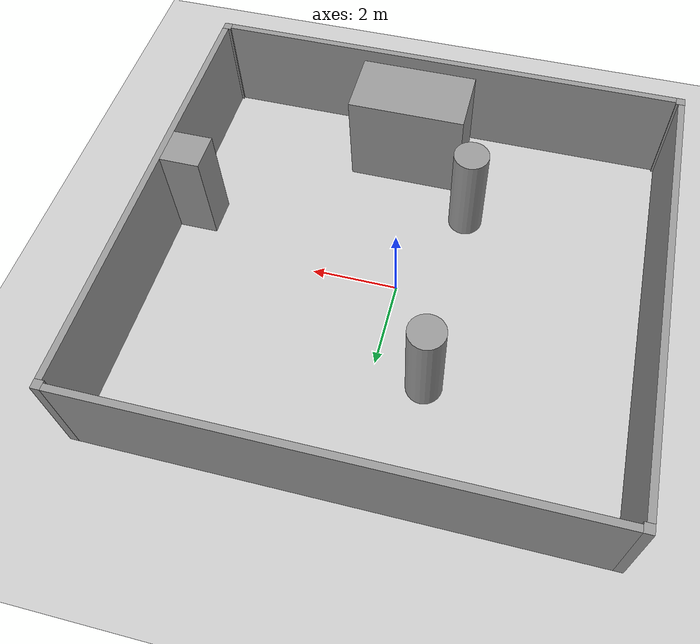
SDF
<sdf version="1.6">
 <world name="default">
  <light name="sun" type="directional">
   <pose>0 0 10 0 -0 0</pose>
   <diffuse>0.8 0.8 0.8 1</diffuse>
   <specular>0.1 0.1 0.1 1</specular>
   <attenuation>
    <range>1000</range>
    <constant>0.9</constant>
    <linear>0.01</linear>
    <quadratic>0.001</quadratic>
   </attenuation>
   <direction>-0.5 0.5 -1</direction>
  </light>
  <model name="ground_plane">
   <static>1</static>
   <link name="link">
    <collision name="collision">
     <geometry><plane><normal>0 0 1</normal><size>100 100</size></plane></geometry>
     <surface><friction><ode><mu>100</mu><mu2>50</mu2></ode></friction></surface>
    </collision>
    <visual name="visual">
     <cast_shadows>0</cast_shadows>
     <geometry><plane><normal>0 0 1</normal><size>100 100</size></plane></geometry>
     <material>
      <script><uri>file://media/materials/scripts/gazebo.material</uri><name>Gazebo/Grey</name></script>
     </material>
    </visual>
   </link>
  </model>
  <gravity>0 0 -9.8</gravity>
  <magnetic_field>6e-06 2.3e-05 -4.2e-05</magnetic_field>
  <atmosphere type="adiabatic"/>
  <physics name="default_physics" default="0" type="ode">
   <max_step_size>0.001</max_step_size>
   <real_time_factor>1</real_time_factor>
   <real_time_update_rate>1000</real_time_update_rate>
  </physics>
  <scene><ambient>0.4 0.4 0.4 1</ambient><background>0.7 0.7 0.7 1</background><shadows>1</shadows></scene>
  <spherical_coordinates>
   <surface_model>EARTH_WGS84</surface_model>
   <latitude_deg>0</latitude_deg>
   <longitude_deg>0</longitude_deg>
   <elevation>0</elevation>
   <heading_deg>0</heading_deg>
  </spherical_coordinates>
  <model name="bottom_wall">
   <link name="link">
    <pose>0 0 1.2 0 -0 0</pose>
    <inertial>
     <mass>1</mass>
     <inertia><ixx>1</ixx><ixy>0</ixy><ixz>0</ixz><iyy>1</iyy><iyz>0</iyz><izz>1</izz></inertia>
    </inertial>
    <visual name="visual">
     <cast_shadows>0</cast_shadows>
     <geometry><box><size>11 0.15 2.4</size></box></geometry>
     <material>
      <script>
       <uri>model://grey_wall/materials/scripts</uri>
       <uri>model://grey_wall/materials/textures</uri>
       <name>vrc/grey_wall</name>
      </script>
      <ambient>1 1 1 1</ambient>
      <diffuse>1 1 1 1</diffuse>
      <specular>0 0 0 1</specular>
      <emissive>0 0 0 1</emissive>
      <shader type="vertex"><normal_map>__default__</normal_map></shader>
     </material>
    </visual>
    <collision name="collision">
     <geometry><box><size>11 0.15 2.4</size></box></geometry>
     <surface>
      <friction>
       <ode><mu>1</mu><mu2>1</mu2><fdir1>0 0 0</fdir1><slip1>0</slip1><slip2>0</slip2></ode>
       <torsional>
        <coefficient>1</coefficient>
        <patch_radius>0</patch_radius>
        <surface_radius>0</surface_radius>
        <use_patch_radius>1</use_patch_radius>
        <ode><slip>0</slip></ode>
       </torsional>
      </friction>
      <bounce><restitution_coefficient>0</restitution_coefficient><threshold>1e+06</threshold></bounce>
      <contact>
       <collide_without_contact>0</collide_without_contact>
       <collide_without_contact_bitmask>1</collide_without_contact_bitmask>
       <collide_bitmask>1</collide_bitmask>
       <ode>
        <soft_cfm>0</soft_cfm>
        <soft_erp>0.2</soft_erp>
        <kp>1e+13</kp>
        <kd>1</kd>
        <max_vel>0.01</max_vel>
        <min_depth>0</min_depth>
       </ode>
       <bullet>
        <split_impulse>1</split_impulse>
        <split_impulse_penetration_threshold>-0.01</split_impulse_penetration_threshold>
        <soft_cfm>0</soft_cfm>
        <soft_erp>0.2</soft_erp>
        <kp>1e+13</kp>
        <kd>1</kd>
       </bullet>
      </contact>
     </surface>
    </collision>
   </link>
   <static>1</static>
   <pose>0 -5.125 0 0 -0 0</pose>
  </model>
  <model name="top_wall">
   <link name="link">
    <pose>0 0 1.2 0 -0 0</pose>
    <inertial>
     <mass>1</mass>
     <inertia><ixx>1</ixx><ixy>0</ixy><ixz>0</ixz><iyy>1</iyy><iyz>0</iyz><izz>1</izz></inertia>
    </inertial>
    <visual name="visual">
     <cast_shadows>0</cast_shadows>
     <geometry><box><size>11 0.15 2.4</size></box></geometry>
     <material>
      <script>
       <uri>model://grey_wall/materials/scripts</uri>
       <uri>model://grey_wall/materials/textures</uri>
       <name>vrc/grey_wall</name>
      </script>
      <ambient>1 1 1 1</ambient>
      <diffuse>1 1 1 1</diffuse>
      <specular>0 0 0 1</specular>
      <emissive>0 0 0 1</emissive>
      <shader type="vertex"><normal_map>__default__</normal_map></shader>
     </material>
    </visual>
    <collision name="collision">
     <geometry><box><size>11 0.15 2.4</size></box></geometry>
     <surface>
      <friction>
       <ode><mu>1</mu><mu2>1</mu2><fdir1>0 0 0</fdir1><slip1>0</slip1><slip2>0</slip2></ode>
       <torsional>
        <coefficient>1</coefficient>
        <patch_radius>0</patch_radius>
        <surface_radius>0</surface_radius>
        <use_patch_radius>1</use_patch_radius>
        <ode><slip>0</slip></ode>
       </torsional>
      </friction>
      <bounce><restitution_coefficient>0</restitution_coefficient><threshold>1e+06</threshold></bounce>
      <contact>
       <collide_without_contact>0</collide_without_contact>
       <collide_without_contact_bitmask>1</collide_without_contact_bitmask>
       <collide_bitmask>1</collide_bitmask>
       <ode>
        <soft_cfm>0</soft_cfm>
        <soft_erp>0.2</soft_erp>
        <kp>1e+13</kp>
        <kd>1</kd>
        <max_vel>0.01</max_vel>
        <min_depth>0</min_depth>
       </ode>
       <bullet>
        <split_impulse>1</split_impulse>
        <split_impulse_penetration_threshold>-0.01</split_impulse_penetration_threshold>
        <soft_cfm>0</soft_cfm>
        <soft_erp>0.2</soft_erp>
        <kp>1e+13</kp>
        <kd>1</kd>
       </bullet>
      </contact>
     </surface>
    </collision>
   </link>
   <static>1</static>
   <pose>0 5.125 0 0 -0 0</pose>
  </model>
  <model name="left_wall">
   <link name="link">
    <pose>0 0 1.2 0 -0 0</pose>
    <inertial>
     <mass>1</mass>
     <inertia><ixx>1</ixx><ixy>0</ixy><ixz>0</ixz><iyy>1</iyy><iyz>0</iyz><izz>1</izz></inertia>
    </inertial>
    <visual name="visual">
     <cast_shadows>0</cast_shadows>
     <geometry><box><size>0.15 10 2.4</size></box></geometry>
     <material>
      <script>
       <uri>model://grey_wall/materials/scripts</uri>
       <uri>model://grey_wall/materials/textures</uri>
       <name>vrc/grey_wall</name>
      </script>
      <ambient>1 1 1 1</ambient>
      <diffuse>1 1 1 1</diffuse>
      <specular>0 0 0 1</specular>
      <emissive>0 0 0 1</emissive>
      <shader type="vertex"><normal_map>__default__</normal_map></shader>
     </material>
    </visual>
    <collision name="collision">
     <geometry><box><size>0.15 10 2.4</size></box></geometry>
     <surface>
      <friction>
       <ode><mu>1</mu><mu2>1</mu2><fdir1>0 0 0</fdir1><slip1>0</slip1><slip2>0</slip2></ode>
       <torsional>
        <coefficient>1</coefficient>
        <patch_radius>0</patch_radius>
        <surface_radius>0</surface_radius>
        <use_patch_radius>1</use_patch_radius>
        <ode><slip>0</slip></ode>
       </torsional>
      </friction>
      <bounce><restitution_coefficient>0</restitution_coefficient><threshold>1e+06</threshold></bounce>
      <contact>
       <collide_without_contact>0</collide_without_contact>
       <collide_without_contact_bitmask>1</collide_without_contact_bitmask>
       <collide_bitmask>1</collide_bitmask>
       <ode>
        <soft_cfm>0</soft_cfm>
        <soft_erp>0.2</soft_erp>
        <kp>1e+13</kp>
        <kd>1</kd>
        <max_vel>0.01</max_vel>
        <min_depth>0</min_depth>
       </ode>
       <bullet>
        <split_impulse>1</split_impulse>
        <split_impulse_penetration_threshold>-0.01</split_impulse_penetration_threshold>
        <soft_cfm>0</soft_cfm>
        <soft_erp>0.2</soft_erp>
        <kp>1e+13</kp>
        <kd>1</kd>
       </bullet>
      </contact>
     </surface>
    </collision>
   </link>
   <static>1</static>
   <pose>-5.625 0 0 0 -0 0</pose>
  </model>
  <model name="right_wall">
   <link name="link">
    <pose>0 0 1.2 0 -0 0</pose>
    <inertial>
     <mass>1</mass>
     <inertia><ixx>1</ixx><ixy>0</ixy><ixz>0</ixz><iyy>1</iyy><iyz>0</iyz><izz>1</izz></inertia>
    </inertial>
    <visual name="visual">
     <cast_shadows>0</cast_shadows>
     <geometry><box><size>0.15 10 2.4</size></box></geometry>
     <material>
      <script>
       <uri>model://grey_wall/materials/scripts</uri>
       <uri>model://grey_wall/materials/textures</uri>
       <name>vrc/grey_wall</name>
      </script>
      <ambient>1 1 1 1</ambient>
      <diffuse>1 1 1 1</diffuse>
      <specular>0 0 0 1</specular>
      <emissive>0 0 0 1</emissive>
      <shader type="vertex"><normal_map>__default__</normal_map></shader>
     </material>
    </visual>
    <collision name="collision">
     <geometry><box><size>0.15 10 2.4</size></box></geometry>
     <surface>
      <friction>
       <ode><mu>1</mu><mu2>1</mu2><fdir1>0 0 0</fdir1><slip1>0</slip1><slip2>0</slip2></ode>
       <torsional>
        <coefficient>1</coefficient>
        <patch_radius>0</patch_radius>
        <surface_radius>0</surface_radius>
        <use_patch_radius>1</use_patch_radius>
        <ode><slip>0</slip></ode>
       </torsional>
      </friction>
      <bounce><restitution_coefficient>0</restitution_coefficient><threshold>1e+06</threshold></bounce>
      <contact>
       <collide_without_contact>0</collide_without_contact>
       <collide_without_contact_bitmask>1</collide_without_contact_bitmask>
       <collide_bitmask>1</collide_bitmask>
       <ode>
        <soft_cfm>0</soft_cfm>
        <soft_erp>0.2</soft_erp>
        <kp>1e+13</kp>
        <kd>1</kd>
        <max_vel>0.01</max_vel>
        <min_depth>0</min_depth>
       </ode>
       <bullet>
        <split_impulse>1</split_impulse>
        <split_impulse_penetration_threshold>-0.01</split_impulse_penetration_threshold>
        <soft_cfm>0</soft_cfm>
        <soft_erp>0.2</soft_erp>
        <kp>1e+13</kp>
        <kd>1</kd>
       </bullet>
      </contact>
     </surface>
    </collision>
   </link>
   <static>1</static>
   <pose>5.625 0 0 0 -0 0</pose>
  </model>
  <model name="bottom_left_corner">
   <link name="link">
    <pose>0 0 1.2 0 -0 0</pose>
    <inertial>
     <mass>1</mass>
     <inertia><ixx>1</ixx><ixy>0</ixy><ixz>0</ixz><iyy>1</iyy><iyz>0</iyz><izz>1</izz></inertia>
    </inertial>
    <visual name="visual">
     <cast_shadows>0</cast_shadows>
     <geometry><box><size>0.2 0.2 2.4</size></box></geometry>
     <material>
      <script>
       <uri>model://grey_wall/materials/scripts</uri>
       <uri>model://grey_wall/materials/textures</uri>
       <name>vrc/grey_wall</name>
      </script>
      <ambient>1 1 1 1</ambient>
      <diffuse>1 1 1 1</diffuse>
      <specular>0 0 0 1</specular>
      <emissive>0 0 0 1</emissive>
      <shader type="vertex"><normal_map>__default__</normal_map></shader>
     </material>
    </visual>
    <collision name="collision">
     <geometry><box><size>0.2 0.2 2.4</size></box></geometry>
     <surface>
      <friction>
       <ode><mu>1</mu><mu2>1</mu2><fdir1>0 0 0</fdir1><slip1>0</slip1><slip2>0</slip2></ode>
       <torsional>
        <coefficient>1</coefficient>
        <patch_radius>0</patch_radius>
        <surface_radius>0</surface_radius>
        <use_patch_radius>1</use_patch_radius>
        <ode><slip>0</slip></ode>
       </torsional>
      </friction>
      <bounce><restitution_coefficient>0</restitution_coefficient><threshold>1e+06</threshold></bounce>
      <contact>
       <collide_without_contact>0</collide_without_contact>
       <collide_without_contact_bitmask>1</collide_without_contact_bitmask>
       <collide_bitmask>1</collide_bitmask>
       <ode>
        <soft_cfm>0</soft_cfm>
        <soft_erp>0.2</soft_erp>
        <kp>1e+13</kp>
        <kd>1</kd>
        <max_vel>0.01</max_vel>
        <min_depth>0</min_depth>
       </ode>
       <bullet>
        <split_impulse>1</split_impulse>
        <split_impulse_penetration_threshold>-0.01</split_impulse_penetration_threshold>
        <soft_cfm>0</soft_cfm>
        <soft_erp>0.2</soft_erp>
        <kp>1e+13</kp>
        <kd>1</kd>
       </bullet>
      </contact>
     </surface>
    </collision>
   </link>
   <static>1</static>
   <pose>-5.6 -5.1 0 0 -0 0</pose>
  </model>
  <model name="bottom_right_corner">
   <link name="link">
    <pose>0 0 1.2 0 -0 0</pose>
    <inertial>
     <mass>1</mass>
     <inertia><ixx>1</ixx><ixy>0</ixy><ixz>0</ixz><iyy>1</iyy><iyz>0</iyz><izz>1</izz></inertia>
    </inertial>
    <visual name="visual">
     <cast_shadows>0</cast_shadows>
     <geometry><box><size>0.2 0.2 2.4</size></box></geometry>
     <material>
      <script>
       <uri>model://grey_wall/materials/scripts</uri>
       <uri>model://grey_wall/materials/textures</uri>
       <name>vrc/grey_wall</name>
      </script>
      <ambient>1 1 1 1</ambient>
      <diffuse>1 1 1 1</diffuse>
      <specular>0 0 0 1</specular>
      <emissive>0 0 0 1</emissive>
      <shader type="vertex"><normal_map>__default__</normal_map></shader>
     </material>
    </visual>
    <collision name="collision">
     <geometry><box><size>0.2 0.2 2.4</size></box></geometry>
     <surface>
      <friction>
       <ode><mu>1</mu><mu2>1</mu2><fdir1>0 0 0</fdir1><slip1>0</slip1><slip2>0</slip2></ode>
       <torsional>
        <coefficient>1</coefficient>
        <patch_radius>0</patch_radius>
        <surface_radius>0</surface_radius>
        <use_patch_radius>1</use_patch_radius>
        <ode><slip>0</slip></ode>
       </torsional>
      </friction>
      <bounce><restitution_coefficient>0</restitution_coefficient><threshold>1e+06</threshold></bounce>
      <contact>
       <collide_without_contact>0</collide_without_contact>
       <collide_without_contact_bitmask>1</collide_without_contact_bitmask>
       <collide_bitmask>1</collide_bitmask>
       <ode>
        <soft_cfm>0</soft_cfm>
        <soft_erp>0.2</soft_erp>
        <kp>1e+13</kp>
        <kd>1</kd>
        <max_vel>0.01</max_vel>
        <min_depth>0</min_depth>
       </ode>
       <bullet>
        <split_impulse>1</split_impulse>
        <split_impulse_penetration_threshold>-0.01</split_impulse_penetration_threshold>
        <soft_cfm>0</soft_cfm>
        <soft_erp>0.2</soft_erp>
        <kp>1e+13</kp>
        <kd>1</kd>
       </bullet>
      </contact>
     </surface>
    </collision>
   </link>
   <static>1</static>
   <pose>5.6 -5.1 0 0 -0 0</pose>
  </model>
  <model name="top_left_corner">
   <link name="link">
    <pose>0 0 1.2 0 -0 0</pose>
    <inertial>
     <mass>1</mass>
     <inertia><ixx>1</ixx><ixy>0</ixy><ixz>0</ixz><iyy>1</iyy><iyz>0</iyz><izz>1</izz></inertia>
    </inertial>
    <visual name="visual">
     <cast_shadows>0</cast_shadows>
     <geometry><box><size>0.2 0.2 2.4</size></box></geometry>
     <material>
      <script>
       <uri>model://grey_wall/materials/scripts</uri>
       <uri>model://grey_wall/materials/textures</uri>
       <name>vrc/grey_wall</name>
      </script>
      <ambient>1 1 1 1</ambient>
      <diffuse>1 1 1 1</diffuse>
      <specular>0 0 0 1</specular>
      <emissive>0 0 0 1</emissive>
      <shader type="vertex"><normal_map>__default__</normal_map></shader>
     </material>
    </visual>
    <collision name="collision">
     <geometry><box><size>0.2 0.2 2.4</size></box></geometry>
     <surface>
      <friction>
       <ode><mu>1</mu><mu2>1</mu2><fdir1>0 0 0</fdir1><slip1>0</slip1><slip2>0</slip2></ode>
       <torsional>
        <coefficient>1</coefficient>
        <patch_radius>0</patch_radius>
        <surface_radius>0</surface_radius>
        <use_patch_radius>1</use_patch_radius>
        <ode><slip>0</slip></ode>
       </torsional>
      </friction>
      <bounce><restitution_coefficient>0</restitution_coefficient><threshold>1e+06</threshold></bounce>
      <contact>
       <collide_without_contact>0</collide_without_contact>
       <collide_without_contact_bitmask>1</collide_without_contact_bitmask>
       <collide_bitmask>1</collide_bitmask>
       <ode>
        <soft_cfm>0</soft_cfm>
        <soft_erp>0.2</soft_erp>
        <kp>1e+13</kp>
        <kd>1</kd>
        <max_vel>0.01</max_vel>
        <min_depth>0</min_depth>
       </ode>
       <bullet>
        <split_impulse>1</split_impulse>
        <split_impulse_penetration_threshold>-0.01</split_impulse_penetration_threshold>
        <soft_cfm>0</soft_cfm>
        <soft_erp>0.2</soft_erp>
        <kp>1e+13</kp>
        <kd>1</kd>
       </bullet>
      </contact>
     </surface>
    </collision>
   </link>
   <static>1</static>
   <pose>-5.6 5.1 0 0 -0 0</pose>
  </model>
  <model name="top_right_corner">
   <link name="link">
    <pose>0 0 1.2 0 -0 0</pose>
    <inertial>
     <mass>1</mass>
     <inertia><ixx>1</ixx><ixy>0</ixy><ixz>0</ixz><iyy>1</iyy><iyz>0</iyz><izz>1</izz></inertia>
    </inertial>
    <visual name="visual">
     <cast_shadows>0</cast_shadows>
     <geometry><box><size>0.2 0.2 2.4</size></box></geometry>
     <material>
      <script>
       <uri>model://grey_wall/materials/scripts</uri>
       <uri>model://grey_wall/materials/textures</uri>
       <name>vrc/grey_wall</name>
      </script>
      <ambient>1 1 1 1</ambient>
      <diffuse>1 1 1 1</diffuse>
      <specular>0 0 0 1</specular>
      <emissive>0 0 0 1</emissive>
      <shader type="vertex"><normal_map>__default__</normal_map></shader>
     </material>
    </visual>
    <collision name="collision">
     <geometry><box><size>0.2 0.2 2.4</size></box></geometry>
     <surface>
      <friction>
       <ode><mu>1</mu><mu2>1</mu2><fdir1>0 0 0</fdir1><slip1>0</slip1><slip2>0</slip2></ode>
       <torsional>
        <coefficient>1</coefficient>
        <patch_radius>0</patch_radius>
        <surface_radius>0</surface_radius>
        <use_patch_radius>1</use_patch_radius>
        <ode><slip>0</slip></ode>
       </torsional>
      </friction>
      <bounce><restitution_coefficient>0</restitution_coefficient><threshold>1e+06</threshold></bounce>
      <contact>
       <collide_without_contact>0</collide_without_contact>
       <collide_without_contact_bitmask>1</collide_without_contact_bitmask>
       <collide_bitmask>1</collide_bitmask>
       <ode>
        <soft_cfm>0</soft_cfm>
        <soft_erp>0.2</soft_erp>
        <kp>1e+13</kp>
        <kd>1</kd>
        <max_vel>0.01</max_vel>
        <min_depth>0</min_depth>
       </ode>
       <bullet>
        <split_impulse>1</split_impulse>
        <split_impulse_penetration_threshold>-0.01</split_impulse_penetration_threshold>
        <soft_cfm>0</soft_cfm>
        <soft_erp>0.2</soft_erp>
        <kp>1e+13</kp>
        <kd>1</kd>
       </bullet>
      </contact>
     </surface>
    </collision>
   </link>
   <static>1</static>
   <pose>5.6 5.1 0 0 -0 0</pose>
  </model>
  <model name="fly_cycle">
   <link name="link">
    <pose>0 0 1.2 0 -0 0</pose>
    <inertial>
     <mass>1</mass>
     <inertia><ixx>1</ixx><ixy>0</ixy><ixz>0</ixz><iyy>1</iyy><iyz>0</iyz><izz>1</izz></inertia>
    </inertial>
    <visual name="visual">
     <cast_shadows>0</cast_shadows>
     <geometry><box><size>2.74 1.52 2.4</size></box></geometry>
     <material>
      <script>
       <uri>model://grey_wall/materials/scripts</uri>
       <uri>model://grey_wall/materials/textures</uri>
       <name>vrc/grey_wall</name>
      </script>
      <ambient>1 1 1 1</ambient>
      <diffuse>1 1 1 1</diffuse>
      <specular>0 0 0 1</specular>
      <emissive>0 0 0 1</emissive>
      <shader type="vertex"><normal_map>__default__</normal_map></shader>
     </material>
    </visual>
    <collision name="collision">
     <geometry><box><size>2.74 1.52 2.4</size></box></geometry>
     <surface>
      <friction>
       <ode><mu>1</mu><mu2>1</mu2><fdir1>0 0 0</fdir1><slip1>0</slip1><slip2>0</slip2></ode>
       <torsional>
        <coefficient>1</coefficient>
        <patch_radius>0</patch_radius>
        <surface_radius>0</surface_radius>
        <use_patch_radius>1</use_patch_radius>
        <ode><slip>0</slip></ode>
       </torsional>
      </friction>
      <bounce><restitution_coefficient>0</restitution_coefficient><threshold>1e+06</threshold></bounce>
      <contact>
       <collide_without_contact>0</collide_without_contact>
       <collide_without_contact_bitmask>1</collide_without_contact_bitmask>
       <collide_bitmask>1</collide_bitmask>
       <ode>
        <soft_cfm>0</soft_cfm>
        <soft_erp>0.2</soft_erp>
        <kp>1e+13</kp>
        <kd>1</kd>
        <max_vel>0.01</max_vel>
        <min_depth>0</min_depth>
       </ode>
       <bullet>
        <split_impulse>1</split_impulse>
        <split_impulse_penetration_threshold>-0.01</split_impulse_penetration_threshold>
        <soft_cfm>0</soft_cfm>
        <soft_erp>0.2</soft_erp>
        <kp>1e+13</kp>
        <kd>1</kd>
       </bullet>
      </contact>
     </surface>
    </collision>
   </link>
   <static>1</static>
   <pose>0.56 -3.94 0 0 -0 0</pose>
  </model>
  <model name="pillar_1">
   <link name="link">
    <pose>0 0 1.2 0 -0 0</pose>
    <inertial>
     <mass>1</mass>
     <inertia><ixx>1</ixx><ixy>0</ixy><ixz>0</ixz><iyy>1</iyy><iyz>0</iyz><izz>1</izz></inertia>
    </inertial>
    <visual name="visual">
     <cast_shadows>0</cast_shadows>
     <geometry><cylinder><radius>0.405</radius><length>2.4</length></cylinder></geometry>
     <material>
      <script>
       <uri>model://grey_wall/materials/scripts</uri>
       <uri>model://grey_wall/materials/textures</uri>
       <name>vrc/grey_wall</name>
      </script>
      <ambient>1 1 1 1</ambient>
      <diffuse>1 1 1 1</diffuse>
      <specular>0 0 0 1</specular>
      <emissive>0 0 0 1</emissive>
      <shader type="vertex"><normal_map>__default__</normal_map></shader>
     </material>
    </visual>
    <collision name="collision">
     <geometry><cylinder><radius>0.405</radius><length>2.4</length></cylinder></geometry>
     <surface>
      <friction>
       <ode><mu>1</mu><mu2>1</mu2><fdir1>0 0 0</fdir1><slip1>0</slip1><slip2>0</slip2></ode>
       <torsional>
        <coefficient>1</coefficient>
        <patch_radius>0</patch_radius>
        <surface_radius>0</surface_radius>
        <use_patch_radius>1</use_patch_radius>
        <ode><slip>0</slip></ode>
       </torsional>
      </friction>
      <bounce><restitution_coefficient>0</restitution_coefficient><threshold>1e+06</threshold></bounce>
      <contact>
       <collide_without_contact>0</collide_without_contact>
       <collide_without_contact_bitmask>1</collide_without_contact_bitmask>
       <collide_bitmask>1</collide_bitmask>
       <ode>
        <soft_cfm>0</soft_cfm>
        <soft_erp>0.2</soft_erp>
        <kp>1e+13</kp>
        <kd>1</kd>
        <max_vel>0.01</max_vel>
        <min_depth>0</min_depth>
       </ode>
       <bullet>
        <split_impulse>1</split_impulse>
        <split_impulse_penetration_threshold>-0.01</split_impulse_penetration_threshold>
        <soft_cfm>0</soft_cfm>
        <soft_erp>0.2</soft_erp>
        <kp>1e+13</kp>
        <kd>1</kd>
       </bullet>
      </contact>
     </surface>
    </collision>
   </link>
   <static>1</static>
   <pose>-1.17 -2.31 0 0 -0 0</pose>
  </model>
  <model name="pillar_4">
   <link name="link">
    <pose>0 0 1.2 0 -0 0</pose>
    <inertial>
     <mass>1</mass>
     <inertia><ixx>1</ixx><ixy>0</ixy><ixz>0</ixz><iyy>1</iyy><iyz>0</iyz><izz>1</izz></inertia>
    </inertial>
    <visual name="visual">
     <cast_shadows>0</cast_shadows>
     <geometry><cylinder><radius>0.405</radius><length>2.4</length></cylinder></geometry>
     <material>
      <script>
       <uri>model://grey_wall/materials/scripts</uri>
       <uri>model://grey_wall/materials/textures</uri>
       <name>vrc/grey_wall</name>
      </script>
      <ambient>1 1 1 1</ambient>
      <diffuse>1 1 1 1</diffuse>
      <specular>0 0 0 1</specular>
      <emissive>0 0 0 1</emissive>
      <shader type="vertex"><normal_map>__default__</normal_map></shader>
     </material>
    </visual>
    <collision name="collision">
     <geometry><cylinder><radius>0.405</radius><length>2.4</length></cylinder></geometry>
     <surface>
      <friction>
       <ode><mu>1</mu><mu2>1</mu2><fdir1>0 0 0</fdir1><slip1>0</slip1><slip2>0</slip2></ode>
       <torsional>
        <coefficient>1</coefficient>
        <patch_radius>0</patch_radius>
        <surface_radius>0</surface_radius>
        <use_patch_radius>1</use_patch_radius>
        <ode><slip>0</slip></ode>
       </torsional>
      </friction>
      <bounce><restitution_coefficient>0</restitution_coefficient><threshold>1e+06</threshold></bounce>
      <contact>
       <collide_without_contact>0</collide_without_contact>
       <collide_without_contact_bitmask>1</collide_without_contact_bitmask>
       <collide_bitmask>1</collide_bitmask>
       <ode>
        <soft_cfm>0</soft_cfm>
        <soft_erp>0.2</soft_erp>
        <kp>1e+13</kp>
        <kd>1</kd>
        <max_vel>0.01</max_vel>
        <min_depth>0</min_depth>
       </ode>
       <bullet>
        <split_impulse>1</split_impulse>
        <split_impulse_penetration_threshold>-0.01</split_impulse_penetration_threshold>
        <soft_cfm>0</soft_cfm>
        <soft_erp>0.2</soft_erp>
        <kp>1e+13</kp>
        <kd>1</kd>
       </bullet>
      </contact>
     </surface>
    </collision>
   </link>
   <static>1</static>
   <pose>-1.17 2.31 0 0 -0 0</pose>
  </model>
  <model name="right_wall_extrusion">
   <link name="link">
    <pose>0 0 1.2 0 -0 0</pose>
    <inertial>
     <mass>1</mass>
     <inertia><ixx>1</ixx><ixy>0</ixy><ixz>0</ixz><iyy>1</iyy><iyz>0</iyz><izz>1</izz></inertia>
    </inertial>
    <visual name="visual">
     <cast_shadows>0</cast_shadows>
     <geometry><box><size>0.91 0.86 2.4</size></box></geometry>
     <material>
      <script>
       <uri>model://grey_wall/materials/scripts</uri>
       <uri>model://grey_wall/materials/textures</uri>
       <name>vrc/grey_wall</name>
      </script>
      <ambient>1 1 1 1</ambient>
      <diffuse>1 1 1 1</diffuse>
      <specular>0 0 0 1</specular>
      <emissive>0 0 0 1</emissive>
      <shader type="vertex"><normal_map>__default__</normal_map></shader>
     </material>
    </visual>
    <collision name="collision">
     <geometry><box><size>0.91 0.86 2.4</size></box></geometry>
     <surface>
      <friction>
       <ode><mu>1</mu><mu2>1</mu2><fdir1>0 0 0</fdir1><slip1>0</slip1><slip2>0</slip2></ode>
       <torsional>
        <coefficient>1</coefficient>
        <patch_radius>0</patch_radius>
        <surface_radius>0</surface_radius>
        <use_patch_radius>1</use_patch_radius>
        <ode><slip>0</slip></ode>
       </torsional>
      </friction>
      <bounce><restitution_coefficient>0</restitution_coefficient><threshold>1e+06</threshold></bounce>
      <contact>
       <collide_without_contact>0</collide_without_contact>
       <collide_without_contact_bitmask>1</collide_without_contact_bitmask>
       <collide_bitmask>1</collide_bitmask>
       <ode>
        <soft_cfm>0</soft_cfm>
        <soft_erp>0.2</soft_erp>
        <kp>1e+13</kp>
        <kd>1</kd>
        <max_vel>0.01</max_vel>
        <min_depth>0</min_depth>
       </ode>
       <bullet>
        <split_impulse>1</split_impulse>
        <split_impulse_penetration_threshold>-0.01</split_impulse_penetration_threshold>
        <soft_cfm>0</soft_cfm>
        <soft_erp>0.2</soft_erp>
        <kp>1e+13</kp>
        <kd>1</kd>
       </bullet>
      </contact>
     </surface>
    </collision>
   </link>
   <static>1</static>
   <pose>5.095 -0.995 0 0 -0 0</pose>
  </model>
 </world>
</sdf>
